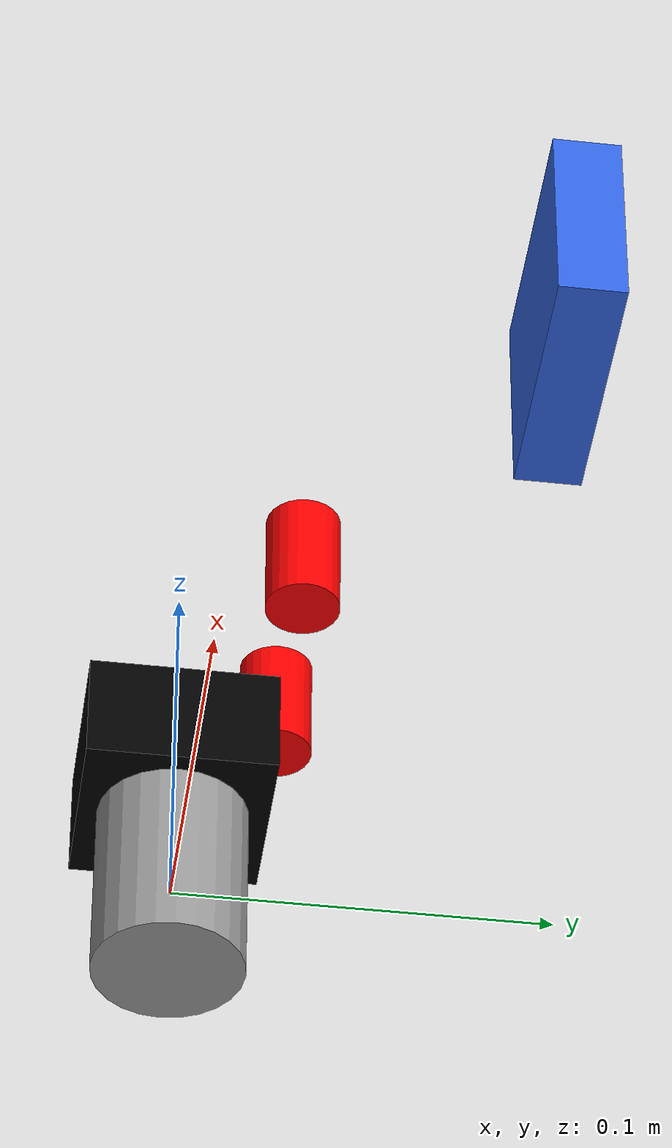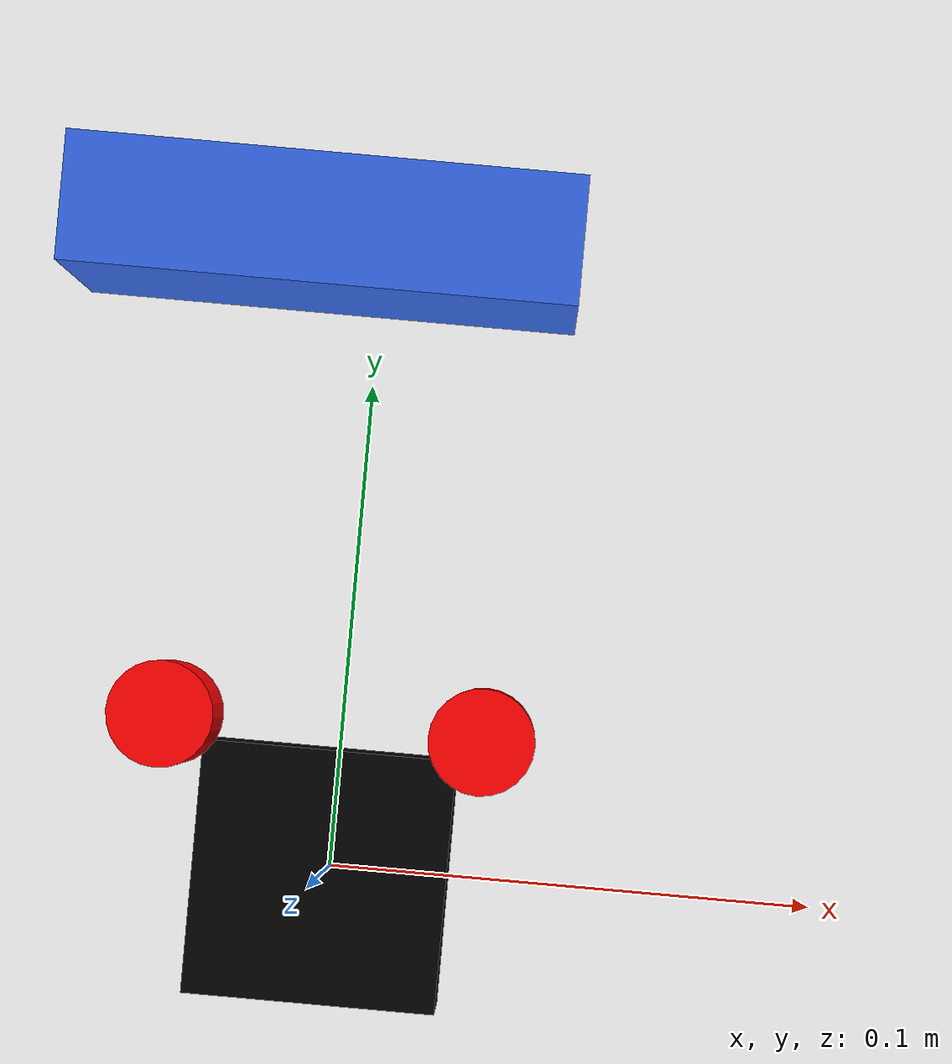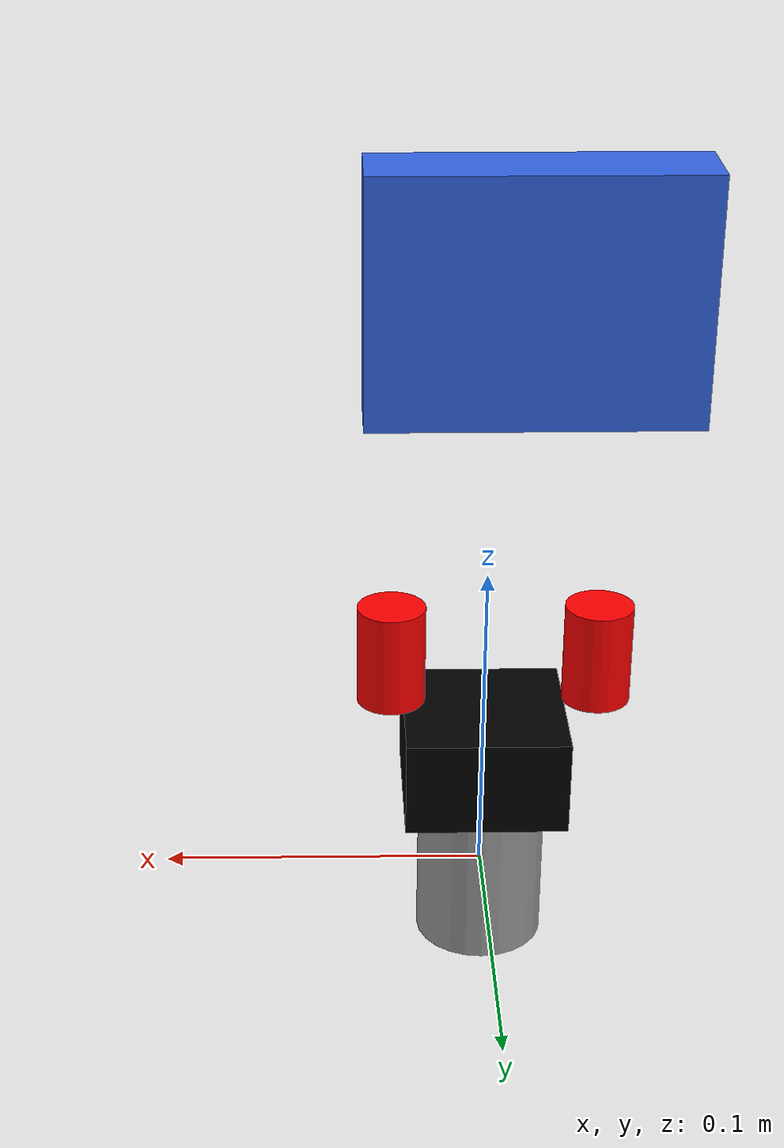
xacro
<?xml version="1.0"?>
<robot xmlns:xacro="http://ros.org/wiki/xacro" name="blossom">

  <xacro:property name="radius" value="0.02"/>
  <xacro:property name="length" value="0.05"/>

  <!-- Base link -->
  <link name="base_link">
    <visual>
      <geometry><cylinder radius="${radius}" length="${length}"/></geometry>
      <origin xyz="0 0 0" rpy="0 0 0"/>
      <material name="gray"><color rgba="0.6 0.6 0.6 1"/></material>
    </visual>
  </link>

  <!-- Base joint -->
  <joint name="base_joint" type="revolute">
    <parent link="base_link"/>
    <child link="base_joint_link"/>
    <origin xyz="0 0 ${length/2}" rpy="0 0 0"/>
    <axis xyz="0 0 1"/>
    <limit lower="-3.14" upper="3.14" effort="1.0" velocity="1.0"/>
  </joint>

  <link name="base_joint_link">
    <visual>
      <geometry><box size="0.05 0.05 0.03"/></geometry>
      <origin xyz="0 0 0.015" rpy="0 0 0"/>
      <material name="black"><color rgba="0 0 0 1"/></material>
    </visual>
  </link>

  <!-- Head joint macro -->
  <xacro:macro name="head_joint" params="name xyz">
    <joint name="${name}" type="revolute">
      <parent link="base_joint_link"/>
      <child link="${name}_link"/>
      <origin xyz="${xyz}" rpy="0 0 0"/>
      <axis xyz="0 0 1"/>
      <limit lower="-3.14" upper="3.14" effort="1.0" velocity="1.0"/>
    </joint>
    <link name="${name}_link">
      <visual>
        <geometry><cylinder radius="0.01" length="0.03"/></geometry>
        <origin xyz="0 0 0.015" rpy="0 0 0"/>
        <material name="red"><color rgba="1 0 0 1"/></material>
      </visual>
    </link>
  </xacro:macro>

  <xacro:head_joint name="head_left" xyz="0.03 0.03 0.05"/>
  <xacro:head_joint name="head_right" xyz="-0.03 0.03 0.05"/>

  <!-- Face screen mount -->
  <link name="face_frame_link">
    <visual>
      <geometry><box size="0.08 0.02 0.06"/></geometry>
      <origin xyz="0 0.06 0.1" rpy="0 0 0"/>
      <material name="blue"><color rgba="0.2 0.4 0.9 1.0"/></material>
    </visual>
  </link>

  <joint name="face_mount" type="fixed">
    <parent link="base_joint_link"/>
    <child link="face_frame_link"/>
    <origin xyz="0 0.05 0.1" rpy="0 0 0"/>
  </joint>

</robot>
